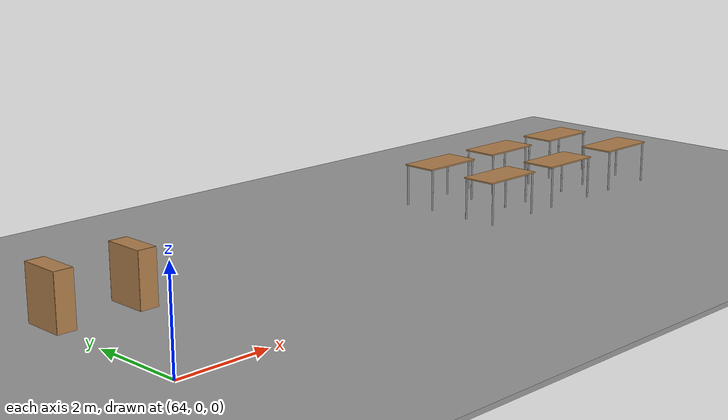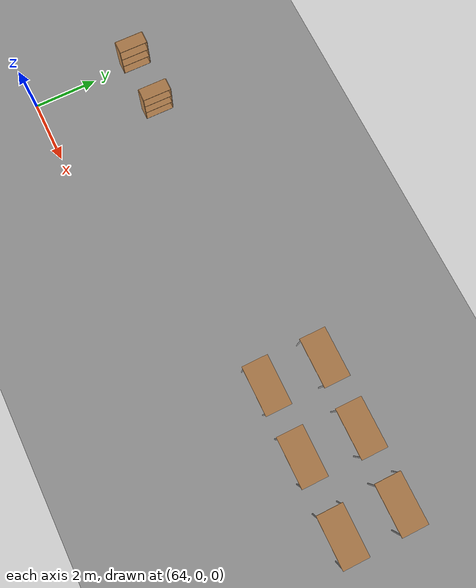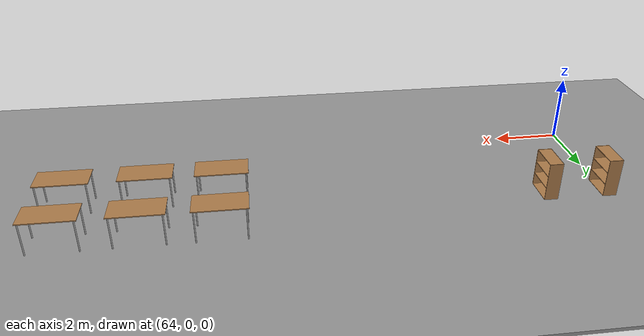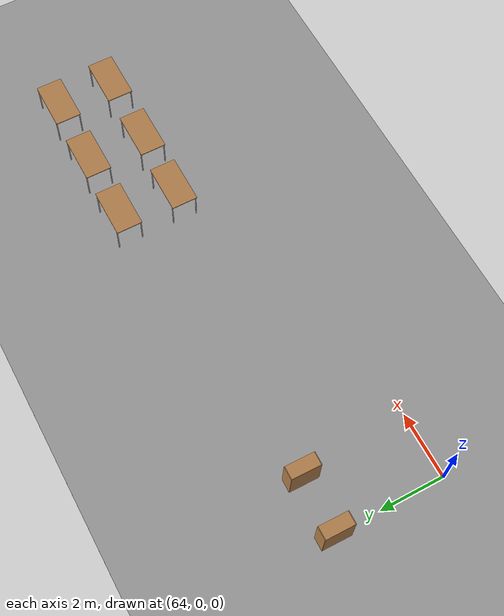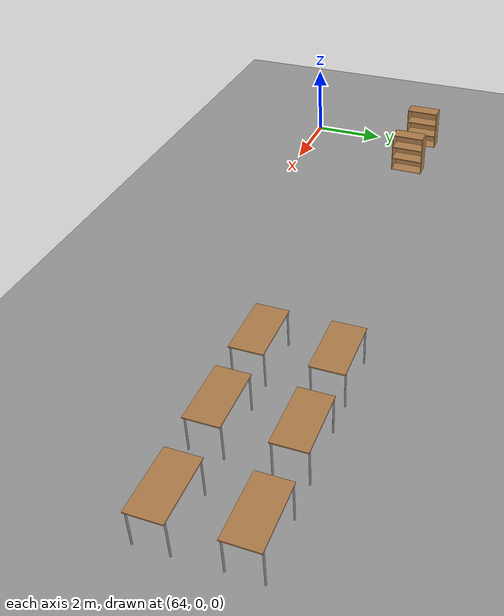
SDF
<sdf version="1.6">
 <world name="default">
  <model name="ground_plane">
   <static>1</static>
   <link name="link">
    <collision name="collision">
     <geometry><plane><normal>0 0 1</normal><size>100 100</size></plane></geometry>
     <surface><friction><ode><mu>100</mu><mu2>50</mu2></ode></friction></surface>
    </collision>
    <visual name="visual">
     <cast_shadows>0</cast_shadows>
     <geometry><plane><normal>0 0 1</normal><size>100 100</size></plane></geometry>
     <material>
      <script><uri>file://media/materials/scripts/gazebo.material</uri><name>Gazebo/Grey</name></script>
     </material>
    </visual>
   </link>
  </model>
  <model name="ground_plane_4">
   <static>1</static>
   <link name="link">
    <collision name="collision">
     <geometry><plane><normal>0 0 1</normal><size>100 100</size></plane></geometry>
     <surface><friction><ode><mu>100</mu><mu2>50</mu2></ode></friction></surface>
    </collision>
    <visual name="visual">
     <cast_shadows>0</cast_shadows>
     <geometry><plane><normal>0 0 1</normal><size>100 100</size></plane></geometry>
     <material>
      <script><uri>file://media/materials/scripts/gazebo.material</uri><name>Gazebo/Grey</name></script>
     </material>
    </visual>
   </link>
   <pose>82.1286 17.4365 0 0 -0 0</pose>
  </model>
  <model name="table_9">
   <static>1</static>
   <link name="link">
    <collision name="surface">
     <pose>0 0 1 0 -0 0</pose>
     <geometry><box><size>1.5 0.8 0.03</size></box></geometry>
     <surface><friction><ode><mu>0.6</mu><mu2>0.6</mu2></ode></friction></surface>
    </collision>
    <visual name="visual1">
     <pose>0 0 1 0 -0 0</pose>
     <geometry><box><size>1.5 0.8 0.03</size></box></geometry>
     <material>
      <script><uri>file://media/materials/scripts/gazebo.material</uri><name>Gazebo/Wood</name></script>
     </material>
    </visual>
    <collision name="front_left_leg">
     <pose>0.68 0.38 0.5 0 -0 0</pose>
     <geometry><cylinder><radius>0.02</radius><length>1</length></cylinder></geometry>
    </collision>
    <visual name="front_left_leg">
     <pose>0.68 0.38 0.5 0 -0 0</pose>
     <geometry><cylinder><radius>0.02</radius><length>1</length></cylinder></geometry>
     <material>
      <script><uri>file://media/materials/scripts/gazebo.material</uri><name>Gazebo/Grey</name></script>
     </material>
    </visual>
    <collision name="front_right_leg">
     <pose>0.68 -0.38 0.5 0 -0 0</pose>
     <geometry><cylinder><radius>0.02</radius><length>1</length></cylinder></geometry>
    </collision>
    <visual name="front_right_leg">
     <pose>0.68 -0.38 0.5 0 -0 0</pose>
     <geometry><cylinder><radius>0.02</radius><length>1</length></cylinder></geometry>
     <material>
      <script><uri>file://media/materials/scripts/gazebo.material</uri><name>Gazebo/Grey</name></script>
     </material>
    </visual>
    <collision name="back_right_leg">
     <pose>-0.68 -0.38 0.5 0 -0 0</pose>
     <geometry><cylinder><radius>0.02</radius><length>1</length></cylinder></geometry>
    </collision>
    <visual name="back_right_leg">
     <pose>-0.68 -0.38 0.5 0 -0 0</pose>
     <geometry><cylinder><radius>0.02</radius><length>1</length></cylinder></geometry>
     <material>
      <script><uri>file://media/materials/scripts/gazebo.material</uri><name>Gazebo/Grey</name></script>
     </material>
    </visual>
    <collision name="back_left_leg">
     <pose>-0.68 0.38 0.5 0 -0 0</pose>
     <geometry><cylinder><radius>0.02</radius><length>1</length></cylinder></geometry>
    </collision>
    <visual name="back_left_leg">
     <pose>-0.68 0.38 0.5 0 -0 0</pose>
     <geometry><cylinder><radius>0.02</radius><length>1</length></cylinder></geometry>
     <material>
      <script><uri>file://media/materials/scripts/gazebo.material</uri><name>Gazebo/Grey</name></script>
     </material>
    </visual>
   </link>
   <pose>75.0941 4.3048 0 0 -0 0</pose>
  </model>
  <model name="table_10">
   <static>1</static>
   <link name="link">
    <collision name="surface">
     <pose>0 0 1 0 -0 0</pose>
     <geometry><box><size>1.5 0.8 0.03</size></box></geometry>
     <surface><friction><ode><mu>0.6</mu><mu2>0.6</mu2></ode></friction></surface>
    </collision>
    <visual name="visual1">
     <pose>0 0 1 0 -0 0</pose>
     <geometry><box><size>1.5 0.8 0.03</size></box></geometry>
     <material>
      <script><uri>file://media/materials/scripts/gazebo.material</uri><name>Gazebo/Wood</name></script>
     </material>
    </visual>
    <collision name="front_left_leg">
     <pose>0.68 0.38 0.5 0 -0 0</pose>
     <geometry><cylinder><radius>0.02</radius><length>1</length></cylinder></geometry>
    </collision>
    <visual name="front_left_leg">
     <pose>0.68 0.38 0.5 0 -0 0</pose>
     <geometry><cylinder><radius>0.02</radius><length>1</length></cylinder></geometry>
     <material>
      <script><uri>file://media/materials/scripts/gazebo.material</uri><name>Gazebo/Grey</name></script>
     </material>
    </visual>
    <collision name="front_right_leg">
     <pose>0.68 -0.38 0.5 0 -0 0</pose>
     <geometry><cylinder><radius>0.02</radius><length>1</length></cylinder></geometry>
    </collision>
    <visual name="front_right_leg">
     <pose>0.68 -0.38 0.5 0 -0 0</pose>
     <geometry><cylinder><radius>0.02</radius><length>1</length></cylinder></geometry>
     <material>
      <script><uri>file://media/materials/scripts/gazebo.material</uri><name>Gazebo/Grey</name></script>
     </material>
    </visual>
    <collision name="back_right_leg">
     <pose>-0.68 -0.38 0.5 0 -0 0</pose>
     <geometry><cylinder><radius>0.02</radius><length>1</length></cylinder></geometry>
    </collision>
    <visual name="back_right_leg">
     <pose>-0.68 -0.38 0.5 0 -0 0</pose>
     <geometry><cylinder><radius>0.02</radius><length>1</length></cylinder></geometry>
     <material>
      <script><uri>file://media/materials/scripts/gazebo.material</uri><name>Gazebo/Grey</name></script>
     </material>
    </visual>
    <collision name="back_left_leg">
     <pose>-0.68 0.38 0.5 0 -0 0</pose>
     <geometry><cylinder><radius>0.02</radius><length>1</length></cylinder></geometry>
    </collision>
    <visual name="back_left_leg">
     <pose>-0.68 0.38 0.5 0 -0 0</pose>
     <geometry><cylinder><radius>0.02</radius><length>1</length></cylinder></geometry>
     <material>
      <script><uri>file://media/materials/scripts/gazebo.material</uri><name>Gazebo/Grey</name></script>
     </material>
    </visual>
   </link>
   <pose>77.2089 4.30261 0 0 -0 0</pose>
  </model>
  <model name="table_11">
   <static>1</static>
   <link name="link">
    <collision name="surface">
     <pose>0 0 1 0 -0 0</pose>
     <geometry><box><size>1.5 0.8 0.03</size></box></geometry>
     <surface><friction><ode><mu>0.6</mu><mu2>0.6</mu2></ode></friction></surface>
    </collision>
    <visual name="visual1">
     <pose>0 0 1 0 -0 0</pose>
     <geometry><box><size>1.5 0.8 0.03</size></box></geometry>
     <material>
      <script><uri>file://media/materials/scripts/gazebo.material</uri><name>Gazebo/Wood</name></script>
     </material>
    </visual>
    <collision name="front_left_leg">
     <pose>0.68 0.38 0.5 0 -0 0</pose>
     <geometry><cylinder><radius>0.02</radius><length>1</length></cylinder></geometry>
    </collision>
    <visual name="front_left_leg">
     <pose>0.68 0.38 0.5 0 -0 0</pose>
     <geometry><cylinder><radius>0.02</radius><length>1</length></cylinder></geometry>
     <material>
      <script><uri>file://media/materials/scripts/gazebo.material</uri><name>Gazebo/Grey</name></script>
     </material>
    </visual>
    <collision name="front_right_leg">
     <pose>0.68 -0.38 0.5 0 -0 0</pose>
     <geometry><cylinder><radius>0.02</radius><length>1</length></cylinder></geometry>
    </collision>
    <visual name="front_right_leg">
     <pose>0.68 -0.38 0.5 0 -0 0</pose>
     <geometry><cylinder><radius>0.02</radius><length>1</length></cylinder></geometry>
     <material>
      <script><uri>file://media/materials/scripts/gazebo.material</uri><name>Gazebo/Grey</name></script>
     </material>
    </visual>
    <collision name="back_right_leg">
     <pose>-0.68 -0.38 0.5 0 -0 0</pose>
     <geometry><cylinder><radius>0.02</radius><length>1</length></cylinder></geometry>
    </collision>
    <visual name="back_right_leg">
     <pose>-0.68 -0.38 0.5 0 -0 0</pose>
     <geometry><cylinder><radius>0.02</radius><length>1</length></cylinder></geometry>
     <material>
      <script><uri>file://media/materials/scripts/gazebo.material</uri><name>Gazebo/Grey</name></script>
     </material>
    </visual>
    <collision name="back_left_leg">
     <pose>-0.68 0.38 0.5 0 -0 0</pose>
     <geometry><cylinder><radius>0.02</radius><length>1</length></cylinder></geometry>
    </collision>
    <visual name="back_left_leg">
     <pose>-0.68 0.38 0.5 0 -0 0</pose>
     <geometry><cylinder><radius>0.02</radius><length>1</length></cylinder></geometry>
     <material>
      <script><uri>file://media/materials/scripts/gazebo.material</uri><name>Gazebo/Grey</name></script>
     </material>
    </visual>
   </link>
   <pose>79.3839 4.30475 0 0 -0 0</pose>
  </model>
  <model name="table_12">
   <static>1</static>
   <link name="link">
    <collision name="surface">
     <pose>0 0 1 0 -0 0</pose>
     <geometry><box><size>1.5 0.8 0.03</size></box></geometry>
     <surface><friction><ode><mu>0.6</mu><mu2>0.6</mu2></ode></friction></surface>
    </collision>
    <visual name="visual1">
     <pose>0 0 1 0 -0 0</pose>
     <geometry><box><size>1.5 0.8 0.03</size></box></geometry>
     <material>
      <script><uri>file://media/materials/scripts/gazebo.material</uri><name>Gazebo/Wood</name></script>
     </material>
    </visual>
    <collision name="front_left_leg">
     <pose>0.68 0.38 0.5 0 -0 0</pose>
     <geometry><cylinder><radius>0.02</radius><length>1</length></cylinder></geometry>
    </collision>
    <visual name="front_left_leg">
     <pose>0.68 0.38 0.5 0 -0 0</pose>
     <geometry><cylinder><radius>0.02</radius><length>1</length></cylinder></geometry>
     <material>
      <script><uri>file://media/materials/scripts/gazebo.material</uri><name>Gazebo/Grey</name></script>
     </material>
    </visual>
    <collision name="front_right_leg">
     <pose>0.68 -0.38 0.5 0 -0 0</pose>
     <geometry><cylinder><radius>0.02</radius><length>1</length></cylinder></geometry>
    </collision>
    <visual name="front_right_leg">
     <pose>0.68 -0.38 0.5 0 -0 0</pose>
     <geometry><cylinder><radius>0.02</radius><length>1</length></cylinder></geometry>
     <material>
      <script><uri>file://media/materials/scripts/gazebo.material</uri><name>Gazebo/Grey</name></script>
     </material>
    </visual>
    <collision name="back_right_leg">
     <pose>-0.68 -0.38 0.5 0 -0 0</pose>
     <geometry><cylinder><radius>0.02</radius><length>1</length></cylinder></geometry>
    </collision>
    <visual name="back_right_leg">
     <pose>-0.68 -0.38 0.5 0 -0 0</pose>
     <geometry><cylinder><radius>0.02</radius><length>1</length></cylinder></geometry>
     <material>
      <script><uri>file://media/materials/scripts/gazebo.material</uri><name>Gazebo/Grey</name></script>
     </material>
    </visual>
    <collision name="back_left_leg">
     <pose>-0.68 0.38 0.5 0 -0 0</pose>
     <geometry><cylinder><radius>0.02</radius><length>1</length></cylinder></geometry>
    </collision>
    <visual name="back_left_leg">
     <pose>-0.68 0.38 0.5 0 -0 0</pose>
     <geometry><cylinder><radius>0.02</radius><length>1</length></cylinder></geometry>
     <material>
      <script><uri>file://media/materials/scripts/gazebo.material</uri><name>Gazebo/Grey</name></script>
     </material>
    </visual>
   </link>
   <pose>75.0834 2.51521 0 0 -0 0</pose>
  </model>
  <model name="table_13">
   <static>1</static>
   <link name="link">
    <collision name="surface">
     <pose>0 0 1 0 -0 0</pose>
     <geometry><box><size>1.5 0.8 0.03</size></box></geometry>
     <surface><friction><ode><mu>0.6</mu><mu2>0.6</mu2></ode></friction></surface>
    </collision>
    <visual name="visual1">
     <pose>0 0 1 0 -0 0</pose>
     <geometry><box><size>1.5 0.8 0.03</size></box></geometry>
     <material>
      <script><uri>file://media/materials/scripts/gazebo.material</uri><name>Gazebo/Wood</name></script>
     </material>
    </visual>
    <collision name="front_left_leg">
     <pose>0.68 0.38 0.5 0 -0 0</pose>
     <geometry><cylinder><radius>0.02</radius><length>1</length></cylinder></geometry>
    </collision>
    <visual name="front_left_leg">
     <pose>0.68 0.38 0.5 0 -0 0</pose>
     <geometry><cylinder><radius>0.02</radius><length>1</length></cylinder></geometry>
     <material>
      <script><uri>file://media/materials/scripts/gazebo.material</uri><name>Gazebo/Grey</name></script>
     </material>
    </visual>
    <collision name="front_right_leg">
     <pose>0.68 -0.38 0.5 0 -0 0</pose>
     <geometry><cylinder><radius>0.02</radius><length>1</length></cylinder></geometry>
    </collision>
    <visual name="front_right_leg">
     <pose>0.68 -0.38 0.5 0 -0 0</pose>
     <geometry><cylinder><radius>0.02</radius><length>1</length></cylinder></geometry>
     <material>
      <script><uri>file://media/materials/scripts/gazebo.material</uri><name>Gazebo/Grey</name></script>
     </material>
    </visual>
    <collision name="back_right_leg">
     <pose>-0.68 -0.38 0.5 0 -0 0</pose>
     <geometry><cylinder><radius>0.02</radius><length>1</length></cylinder></geometry>
    </collision>
    <visual name="back_right_leg">
     <pose>-0.68 -0.38 0.5 0 -0 0</pose>
     <geometry><cylinder><radius>0.02</radius><length>1</length></cylinder></geometry>
     <material>
      <script><uri>file://media/materials/scripts/gazebo.material</uri><name>Gazebo/Grey</name></script>
     </material>
    </visual>
    <collision name="back_left_leg">
     <pose>-0.68 0.38 0.5 0 -0 0</pose>
     <geometry><cylinder><radius>0.02</radius><length>1</length></cylinder></geometry>
    </collision>
    <visual name="back_left_leg">
     <pose>-0.68 0.38 0.5 0 -0 0</pose>
     <geometry><cylinder><radius>0.02</radius><length>1</length></cylinder></geometry>
     <material>
      <script><uri>file://media/materials/scripts/gazebo.material</uri><name>Gazebo/Grey</name></script>
     </material>
    </visual>
   </link>
   <pose>77.1799 2.51562 0 0 -0 0</pose>
  </model>
  <model name="table_14">
   <static>1</static>
   <link name="link">
    <collision name="surface">
     <pose>0 0 1 0 -0 0</pose>
     <geometry><box><size>1.5 0.8 0.03</size></box></geometry>
     <surface><friction><ode><mu>0.6</mu><mu2>0.6</mu2></ode></friction></surface>
    </collision>
    <visual name="visual1">
     <pose>0 0 1 0 -0 0</pose>
     <geometry><box><size>1.5 0.8 0.03</size></box></geometry>
     <material>
      <script><uri>file://media/materials/scripts/gazebo.material</uri><name>Gazebo/Wood</name></script>
     </material>
    </visual>
    <collision name="front_left_leg">
     <pose>0.68 0.38 0.5 0 -0 0</pose>
     <geometry><cylinder><radius>0.02</radius><length>1</length></cylinder></geometry>
    </collision>
    <visual name="front_left_leg">
     <pose>0.68 0.38 0.5 0 -0 0</pose>
     <geometry><cylinder><radius>0.02</radius><length>1</length></cylinder></geometry>
     <material>
      <script><uri>file://media/materials/scripts/gazebo.material</uri><name>Gazebo/Grey</name></script>
     </material>
    </visual>
    <collision name="front_right_leg">
     <pose>0.68 -0.38 0.5 0 -0 0</pose>
     <geometry><cylinder><radius>0.02</radius><length>1</length></cylinder></geometry>
    </collision>
    <visual name="front_right_leg">
     <pose>0.68 -0.38 0.5 0 -0 0</pose>
     <geometry><cylinder><radius>0.02</radius><length>1</length></cylinder></geometry>
     <material>
      <script><uri>file://media/materials/scripts/gazebo.material</uri><name>Gazebo/Grey</name></script>
     </material>
    </visual>
    <collision name="back_right_leg">
     <pose>-0.68 -0.38 0.5 0 -0 0</pose>
     <geometry><cylinder><radius>0.02</radius><length>1</length></cylinder></geometry>
    </collision>
    <visual name="back_right_leg">
     <pose>-0.68 -0.38 0.5 0 -0 0</pose>
     <geometry><cylinder><radius>0.02</radius><length>1</length></cylinder></geometry>
     <material>
      <script><uri>file://media/materials/scripts/gazebo.material</uri><name>Gazebo/Grey</name></script>
     </material>
    </visual>
    <collision name="back_left_leg">
     <pose>-0.68 0.38 0.5 0 -0 0</pose>
     <geometry><cylinder><radius>0.02</radius><length>1</length></cylinder></geometry>
    </collision>
    <visual name="back_left_leg">
     <pose>-0.68 0.38 0.5 0 -0 0</pose>
     <geometry><cylinder><radius>0.02</radius><length>1</length></cylinder></geometry>
     <material>
      <script><uri>file://media/materials/scripts/gazebo.material</uri><name>Gazebo/Grey</name></script>
     </material>
    </visual>
   </link>
   <pose>79.4209 2.54135 0 0 -0 0</pose>
  </model>
  <model name="bookshelf_clone_1">
   <static>1</static>
   <link name="link">
    <inertial><mass>1</mass></inertial>
    <collision name="back">
     <pose>0 0.005 0.6 0 -0 0</pose>
     <geometry><box><size>0.9 0.01 1.2</size></box></geometry>
    </collision>
    <visual name="visual1">
     <pose>0 0.005 0.6 0 -0 0</pose>
     <geometry><box><size>0.9 0.01 1.2</size></box></geometry>
     <material>
      <script><uri>file://media/materials/scripts/gazebo.material</uri><name>Gazebo/Wood</name></script>
     </material>
    </visual>
    <collision name="left_side">
     <pose>0.45 -0.195 0.6 0 -0 0</pose>
     <geometry><box><size>0.02 0.4 1.2</size></box></geometry>
    </collision>
    <visual name="visual2">
     <pose>0.45 -0.195 0.6 0 -0 0</pose>
     <geometry><box><size>0.02 0.4 1.2</size></box></geometry>
     <material>
      <script><uri>file://media/materials/scripts/gazebo.material</uri><name>Gazebo/Wood</name></script>
     </material>
    </visual>
    <collision name="right_side">
     <pose>-0.45 -0.195 0.6 0 -0 0</pose>
     <geometry><box><size>0.02 0.4 1.2</size></box></geometry>
    </collision>
    <visual name="visual3">
     <pose>-0.45 -0.195 0.6 0 -0 0</pose>
     <geometry><box><size>0.02 0.4 1.2</size></box></geometry>
     <material>
      <script><uri>file://media/materials/scripts/gazebo.material</uri><name>Gazebo/Wood</name></script>
     </material>
    </visual>
    <collision name="bottom">
     <pose>0 -0.195 0.03 0 -0 0</pose>
     <geometry><box><size>0.88 0.4 0.06</size></box></geometry>
    </collision>
    <visual name="visual4">
     <pose>0 -0.195 0.03 0 -0 0</pose>
     <geometry><box><size>0.88 0.4 0.06</size></box></geometry>
     <material>
      <script><uri>file://media/materials/scripts/gazebo.material</uri><name>Gazebo/Wood</name></script>
     </material>
    </visual>
    <collision name="top">
     <pose>0 -0.195 1.19 0 -0 0</pose>
     <geometry><box><size>0.88 0.4 0.02</size></box></geometry>
    </collision>
    <visual name="visual5">
     <pose>0 -0.195 1.19 0 -0 0</pose>
     <geometry><box><size>0.88 0.4 0.02</size></box></geometry>
     <material>
      <script><uri>file://media/materials/scripts/gazebo.material</uri><name>Gazebo/Wood</name></script>
     </material>
    </visual>
    <collision name="low_shelf">
     <pose>0 -0.195 0.43 0 -0 0</pose>
     <geometry><box><size>0.88 0.4 0.02</size></box></geometry>
    </collision>
    <visual name="visual6">
     <pose>0 -0.195 0.43 0 -0 0</pose>
     <geometry><box><size>0.88 0.4 0.02</size></box></geometry>
     <material>
      <script><uri>file://media/materials/scripts/gazebo.material</uri><name>Gazebo/Wood</name></script>
     </material>
    </visual>
    <collision name="high_shelf">
     <pose>0 -0.195 0.8 0 -0 0</pose>
     <geometry><box><size>0.88 0.4 0.02</size></box></geometry>
    </collision>
    <visual name="visual7">
     <pose>0 -0.195 0.8 0 -0 0</pose>
     <geometry><box><size>0.88 0.4 0.02</size></box></geometry>
     <material>
      <script><uri>file://media/materials/scripts/gazebo.material</uri><name>Gazebo/Wood</name></script>
     </material>
    </visual>
   </link>
   <pose>63.8037 3.44802 0 0 -0 1.5577</pose>
  </model>
  <model name="bookshelf_clone_5">
   <static>1</static>
   <link name="link">
    <inertial><mass>1</mass></inertial>
    <collision name="back">
     <pose>0 0.005 0.6 0 -0 0</pose>
     <geometry><box><size>0.9 0.01 1.2</size></box></geometry>
    </collision>
    <visual name="visual1">
     <pose>0 0.005 0.6 0 -0 0</pose>
     <geometry><box><size>0.9 0.01 1.2</size></box></geometry>
     <material>
      <script><uri>file://media/materials/scripts/gazebo.material</uri><name>Gazebo/Wood</name></script>
     </material>
    </visual>
    <collision name="left_side">
     <pose>0.45 -0.195 0.6 0 -0 0</pose>
     <geometry><box><size>0.02 0.4 1.2</size></box></geometry>
    </collision>
    <visual name="visual2">
     <pose>0.45 -0.195 0.6 0 -0 0</pose>
     <geometry><box><size>0.02 0.4 1.2</size></box></geometry>
     <material>
      <script><uri>file://media/materials/scripts/gazebo.material</uri><name>Gazebo/Wood</name></script>
     </material>
    </visual>
    <collision name="right_side">
     <pose>-0.45 -0.195 0.6 0 -0 0</pose>
     <geometry><box><size>0.02 0.4 1.2</size></box></geometry>
    </collision>
    <visual name="visual3">
     <pose>-0.45 -0.195 0.6 0 -0 0</pose>
     <geometry><box><size>0.02 0.4 1.2</size></box></geometry>
     <material>
      <script><uri>file://media/materials/scripts/gazebo.material</uri><name>Gazebo/Wood</name></script>
     </material>
    </visual>
    <collision name="bottom">
     <pose>0 -0.195 0.03 0 -0 0</pose>
     <geometry><box><size>0.88 0.4 0.06</size></box></geometry>
    </collision>
    <visual name="visual4">
     <pose>0 -0.195 0.03 0 -0 0</pose>
     <geometry><box><size>0.88 0.4 0.06</size></box></geometry>
     <material>
      <script><uri>file://media/materials/scripts/gazebo.material</uri><name>Gazebo/Wood</name></script>
     </material>
    </visual>
    <collision name="top">
     <pose>0 -0.195 1.19 0 -0 0</pose>
     <geometry><box><size>0.88 0.4 0.02</size></box></geometry>
    </collision>
    <visual name="visual5">
     <pose>0 -0.195 1.19 0 -0 0</pose>
     <geometry><box><size>0.88 0.4 0.02</size></box></geometry>
     <material>
      <script><uri>file://media/materials/scripts/gazebo.material</uri><name>Gazebo/Wood</name></script>
     </material>
    </visual>
    <collision name="low_shelf">
     <pose>0 -0.195 0.43 0 -0 0</pose>
     <geometry><box><size>0.88 0.4 0.02</size></box></geometry>
    </collision>
    <visual name="visual6">
     <pose>0 -0.195 0.43 0 -0 0</pose>
     <geometry><box><size>0.88 0.4 0.02</size></box></geometry>
     <material>
      <script><uri>file://media/materials/scripts/gazebo.material</uri><name>Gazebo/Wood</name></script>
     </material>
    </visual>
    <collision name="high_shelf">
     <pose>0 -0.195 0.8 0 -0 0</pose>
     <geometry><box><size>0.88 0.4 0.02</size></box></geometry>
    </collision>
    <visual name="visual7">
     <pose>0 -0.195 0.8 0 -0 0</pose>
     <geometry><box><size>0.88 0.4 0.02</size></box></geometry>
     <material>
      <script><uri>file://media/materials/scripts/gazebo.material</uri><name>Gazebo/Wood</name></script>
     </material>
    </visual>
   </link>
   <pose>65.565 3.43372 0 0 -0 1.5577</pose>
  </model>
 </world>
</sdf>
